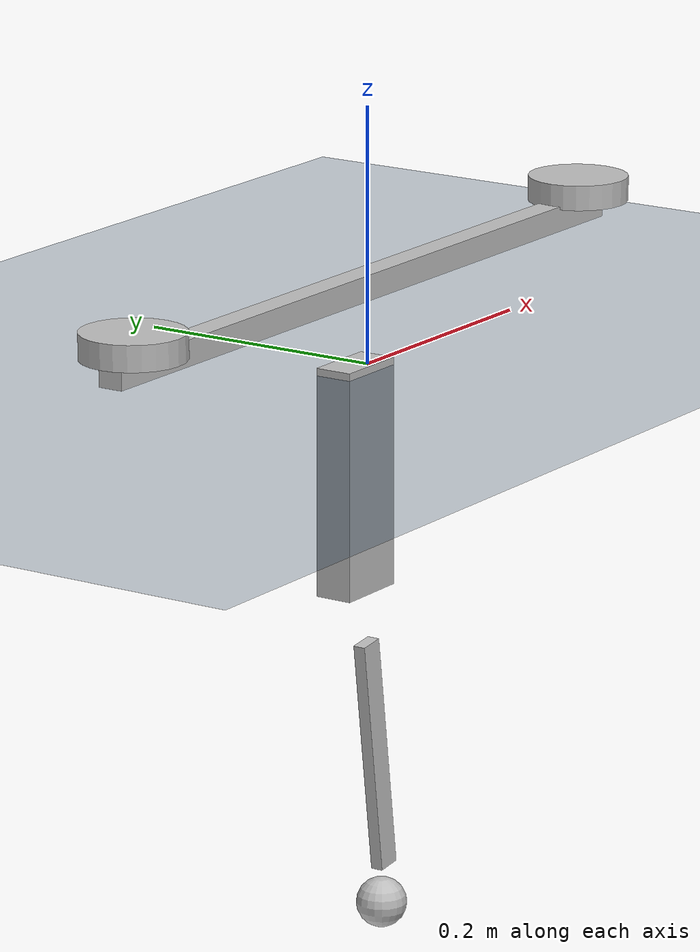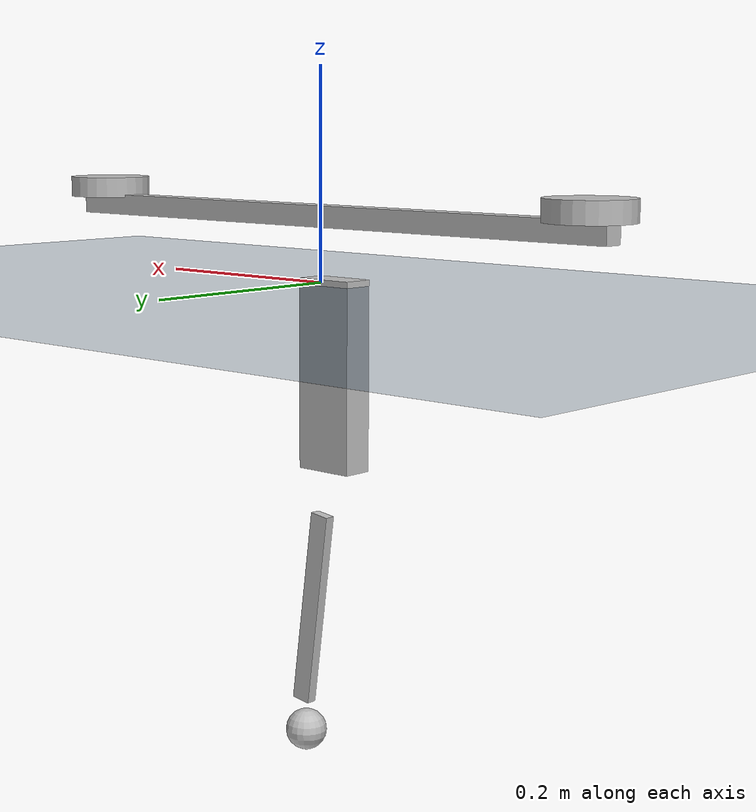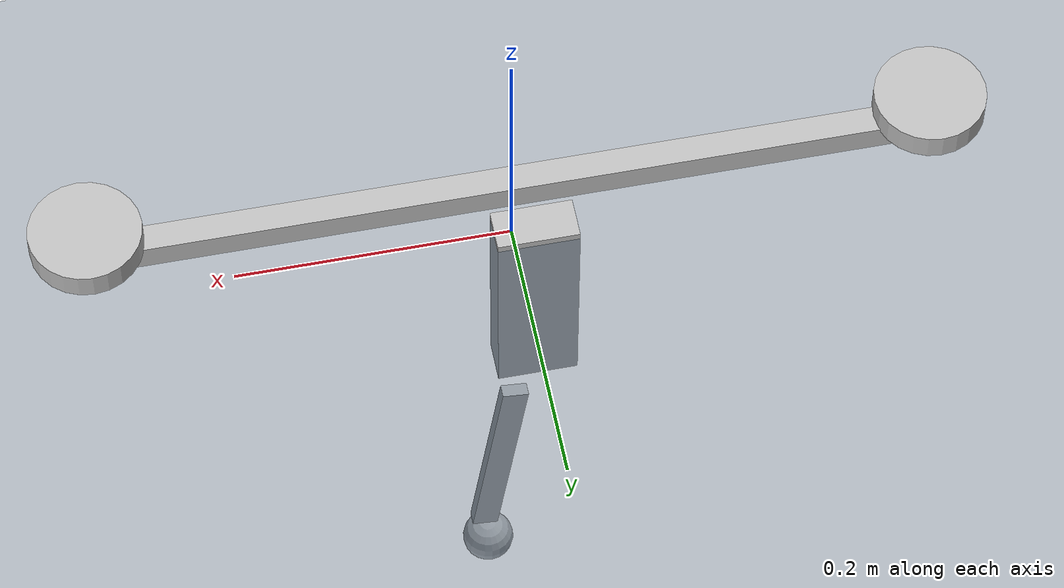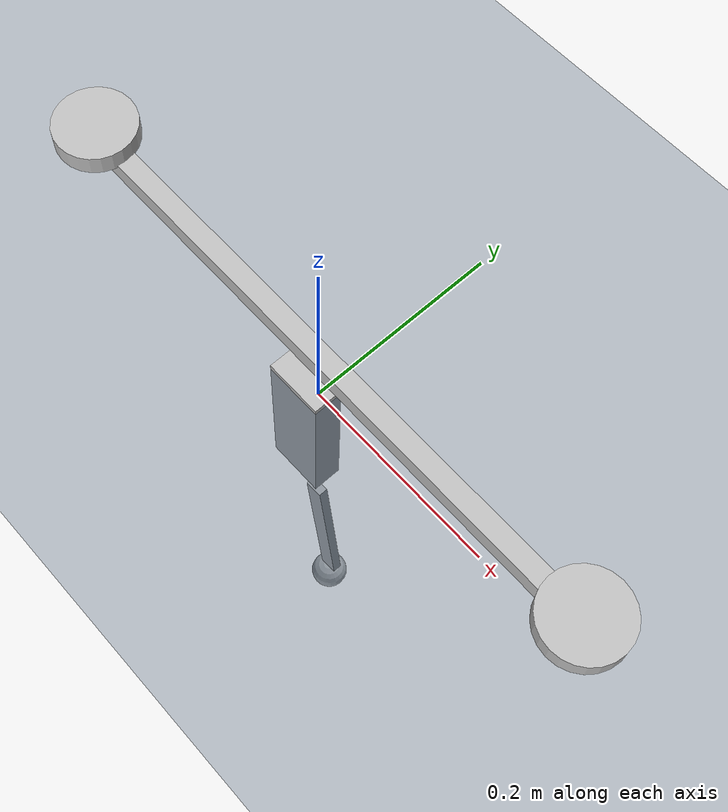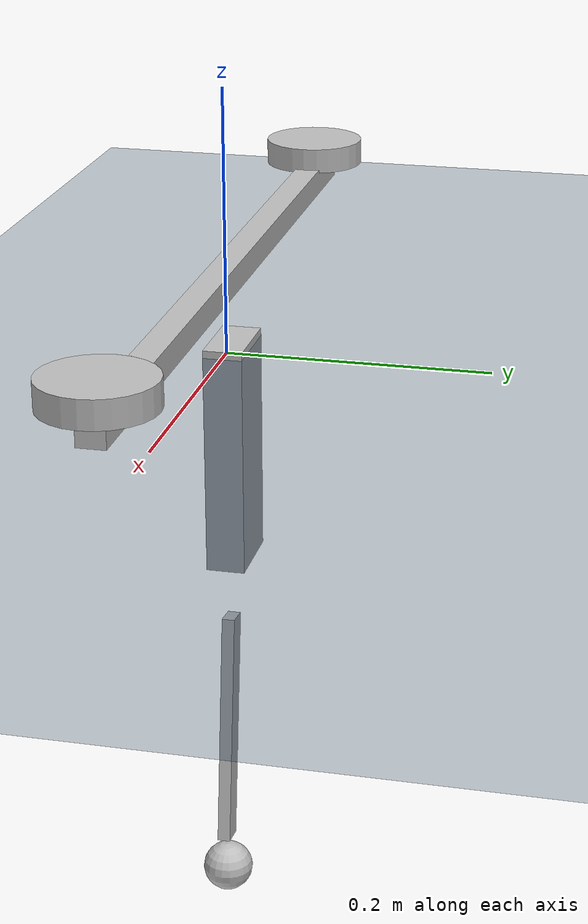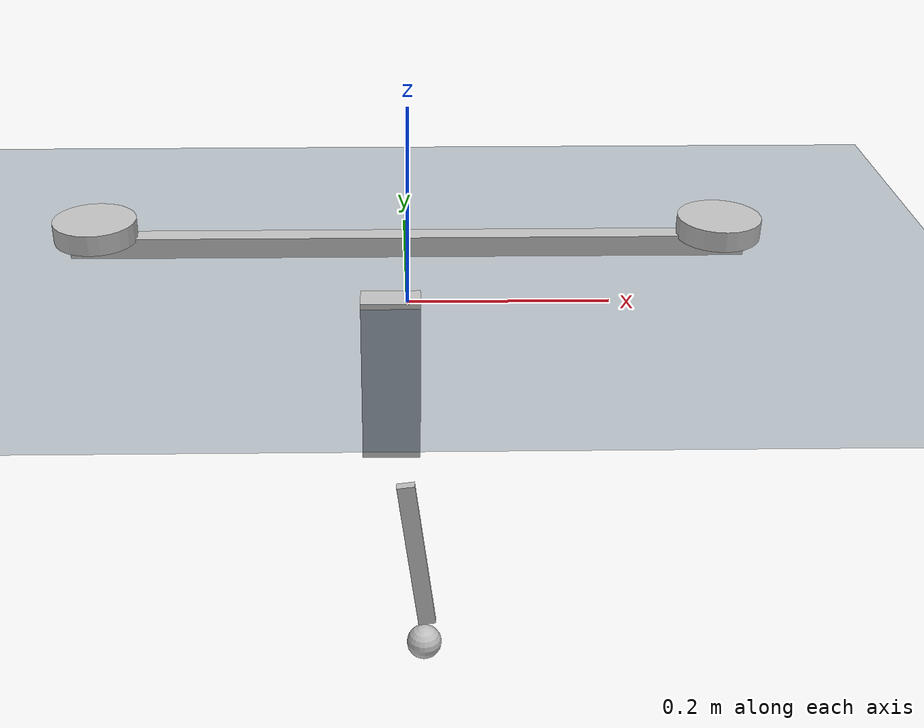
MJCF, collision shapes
<mujoco model="hopper_scene">
  <include file="hopper_model.xml"/>

  <statistic center="0 0 0.1" extent="0.8"/>

  <visual>
    <headlight diffuse="0.6 0.6 0.6" ambient="0.3 0.3 0.3" specular="0 0 0"/>
    <rgba haze="0.15 0.25 0.35 1"/>
    <global azimuth="-130" elevation="-20"/>
  </visual>

  <asset>
    <texture type="skybox" builtin="flat" rgb1="0.3 0.5 0.7" rgb2="0 0 0" width="512" height="3072"/>
    <texture type="2d" name="groundplane" builtin="checker" mark="edge" rgb1="0.2 0.3 0.4" rgb2="0.1 0.2 0.3"
      markrgb="0.8 0.8 0.8" width="300" height="300"/>
    <material name="groundplane" texture="groundplane" texuniform="true" texrepeat="5 5" reflectance="0.2"/>
  </asset>

  <worldbody>
    <light pos="0 0 1.5" dir="0 0 -1" directional="true"/>
    <geom name="floor" size="0 0 0.05" type="plane" material="groundplane"/>
  </worldbody>

</mujoco>

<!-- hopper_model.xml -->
<mujoco model="hopper_model_v2">
  <compiler angle="radian" meshdir="meshes/" autolimits="true"/>

  <default>
    <default class="hopper_v2">
      <geom material="metal" />
      <joint damping="0.1" armature="0.01" frictionloss="0.2"/>
      <motor ctrlrange="-30 30"/>
      <default class="collision">
        <geom mass="0" density="0" group="3"/>
      </default>
      <default class="virtual_joint">
        <joint damping="0" armature="0" frictionloss="0"/>
      </default>
    </default>
  </default>

  <asset>
    <material name="metal" rgba="0.75 0.75 0.75 1"/>

    <mesh name="torso_mesh" content_type="model/stl" file="base_link.STL"/>
    <mesh name="thigh_mesh" content_type="model/stl" file="Thigh.STL"/>
    <mesh name="shank_mesh" content_type="model/stl" file="Shank.STL"/>
  </asset>

  <keyframe>
    <key name="0" qpos="0 0.4 0 0.9 -1.8" />
  </keyframe>

  <worldbody>
    <body name="base_link" pos="0 0 0" quat="1 0 0 0">
      <joint name="x_joint" type="slide" axis="1 0 0" range="-100 100" class="virtual_joint"/>
      <joint name="z_joint" type="slide" axis="0 0 1" range="0 5" class="virtual_joint"/>
      <joint name="pitch_joint" type="hinge" axis="0 1 0" class="virtual_joint"/>

      <body name="Torso" childclass="hopper_v2">
        <inertial
          pos="-3.47977543608903E-05 0.0283416675738976 0.0123233505852236"
          mass="0.691606"
          diaginertia="0.000386049953446763 0.00516450436448171 0.00483980418811997"
        />

        <geom type="mesh" contype="0" conaffinity="0" group="1" density="0" mesh="torso_mesh"/>
        <geom size="0.325 0.01 0.01" pos="0 0.0025 0.0625" type="box" class="collision"/>

        <body name="Front_Weight" pos="0.3 0 0.08">
          <inertial
            pos="0 0 0"
            mass="0.252"
            diaginertia="1.3e-4 1.3e-4 2.55e-4"
          />
          <geom type="cylinder" size="0.04 0.01" pos="0 0 0"/>
        </body>

        <body name="Back_Weight" pos="-0.3 0 0.08">
          <inertial
            pos="0 0 0"
            mass="0.252"
            diaginertia="1.3e-4 1.3e-4 2.55e-4"
          />
          <geom type="cylinder" size="0.04 0.01" pos="0 0 0"/>
        </body>

        <site name="imu" pos="0 0 0" />

        <body name="Thigh">
          <inertial
            pos="-0.00266508662940908 -0.0210989064707258 -0.0184404554474768"
            mass="0.680521373875353"
            diaginertia="0.00121567934619546 0.0015642418763912 0.000404763200727095"
          />
          <joint name="thigh_joint" pos="0 0 0" axis="0 1 0" range="-1.7 1.6"/>
          <geom type="mesh" contype="0" conaffinity="0" group="1" density="0" mesh="thigh_mesh"/>
          <geom size="0.03 0.015 0.09" pos="-0.017 0 -0.085" type="box" class="collision"/>

          <body name="Shank" pos="0 0 -0.22">
            <inertial
              pos="0.00917157947139449 -7.73256057344934E-05 -0.104282712433589"
              quat="0.997888 0 -0.0649542 0"
              mass="0.0613493769638906"
              diaginertia="0.000162590011682181 0.000166902322129974 8.47092575333008E-06"
            />
            <joint name="calf_joint" pos="0 0 0" axis="0 1 0" range="-2.7 -0.4"/>
            <geom type="mesh" contype="0" conaffinity="0" group="1" density="0" mesh="shank_mesh"/>
            <geom size="0.01 0.005 0.095" pos="0.01 0 -0.095" quat="0.997888 0 -0.0649542 0" type="box" class="collision"/>

            <body name="Foot" pos="0.019174 0 -0.21916">
              <inertial
                pos="0 0 0"
                mass="0.03"
                diaginertia="5E-06 5E-06 5E-06"
              />
              <geom size="0.02" class="collision" priority="1" condim="6" friction="1.0 0.02 0.01"/>

              <site name="foot_site" pos="0 0 0" size="0.02" group="3"/>
            </body>
          </body>
        </body>
      </body>
    </body>
  </worldbody>

  <actuator>
    <motor class="hopper_v2" name="thigh" joint="thigh_joint" />
    <motor class="hopper_v2" name="calf" joint="calf_joint" />
  </actuator>

  <sensor>
    <jointpos name="thigh_pos" joint="thigh_joint" noise="0.01"/>
    <jointpos name="calf_pos" joint="calf_joint" noise="0.01"/>

    <jointvel name="thigh_vel" joint="thigh_joint" noise="0.01"/>
    <jointvel name="calf_vel" joint="calf_joint" noise="0.01"/>

    <jointactuatorfrc name="thigh_torque" joint="thigh_joint" noise="0.01"/>
    <jointactuatorfrc name="calf_torque" joint="calf_joint" noise="0.01"/>

    <framequat name="imu_quat" objtype="site" objname="imu" noise="0.01"/>
    <gyro name="imu_gyro" site="imu" noise="0.01"/>
    <accelerometer name="imu_acc" site="imu" noise="0.01"/>

    <framepos name="frame_pos" objtype="site" objname="imu"/>
    <framelinvel name="frame_vel" objtype="site" objname="imu"/>

    <touch name="foot_force" site="foot_site"/>
  </sensor>

</mujoco>
